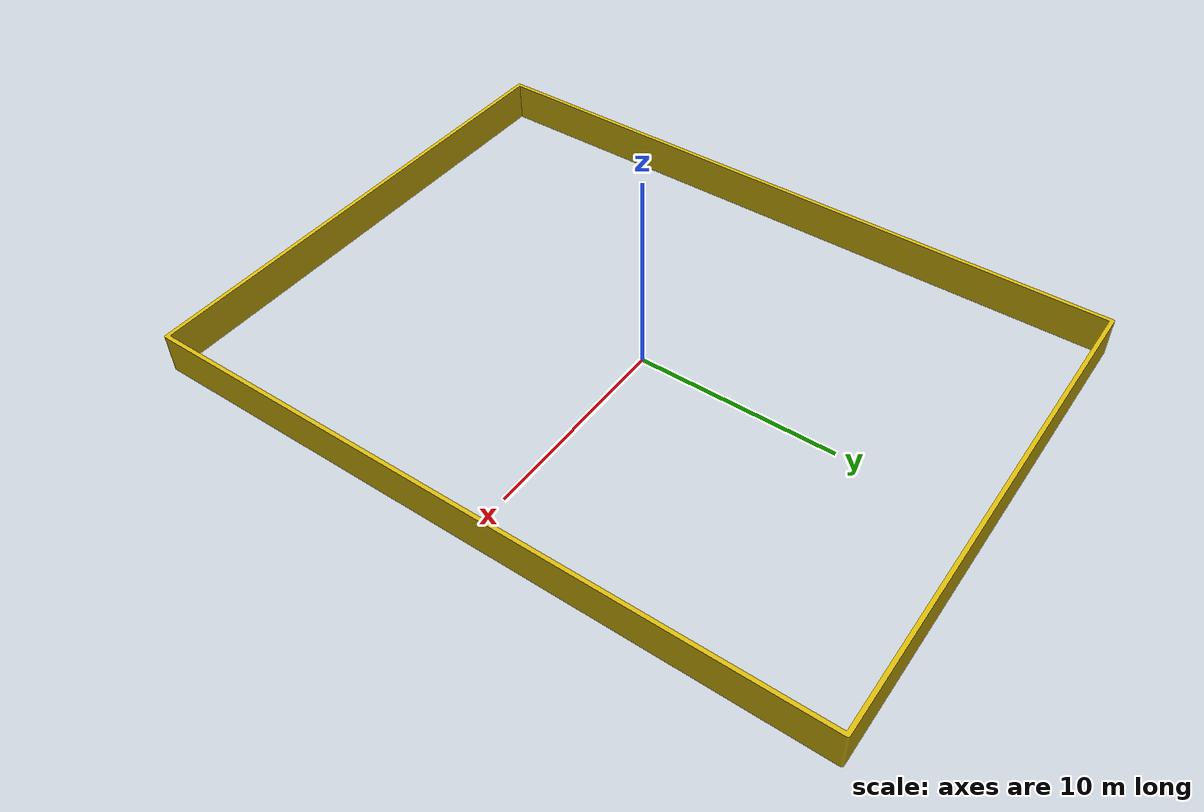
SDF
<?xml version="1.0" ?>
<sdf version="1.6">
  <model name="pcg_sample_walls">
    <pose frame="">0 0 1 0 -0 0</pose>
    <static>1</static>
    <self_collide>0</self_collide>
    <allow_auto_disable>0</allow_auto_disable>
    <link name="mesh">
      <kinematic>0</kinematic>
      <gravity>1</gravity>
      <self_collide>0</self_collide>
      <collision name="collision">
        <geometry>
          <mesh>
            <uri>model://pcg_sample_walls/meshes/TBkDmPrARY.stl</uri>
            <scale>1 1 1</scale>
          </mesh>
        </geometry>
        <pose frame="">-0 -0 -1 0 -0 0</pose>
        <max_contacts>20</max_contacts>
      </collision>
      <visual name="visual">
        <geometry>
          <mesh>
            <uri>model://pcg_sample_walls/meshes/AzZxRDZCpA.stl</uri>
            <scale>1 1 1</scale>
          </mesh>
        </geometry>
        <material>
          <ambient>0.835294 0.713725 0.0392157 1</ambient>
          <diffuse>0.8352941176470589 0.7137254901960784 0.0392156862745098 1</diffuse>
        </material>
        <pose frame="">-0 -0 -1 0 -0 0</pose>
        <cast_shadows>1</cast_shadows>
        <transparency>0.0</transparency>
      </visual>
      <pose frame="">0 0 0 0 -0 0</pose>
    </link>
  </model>
</sdf>
